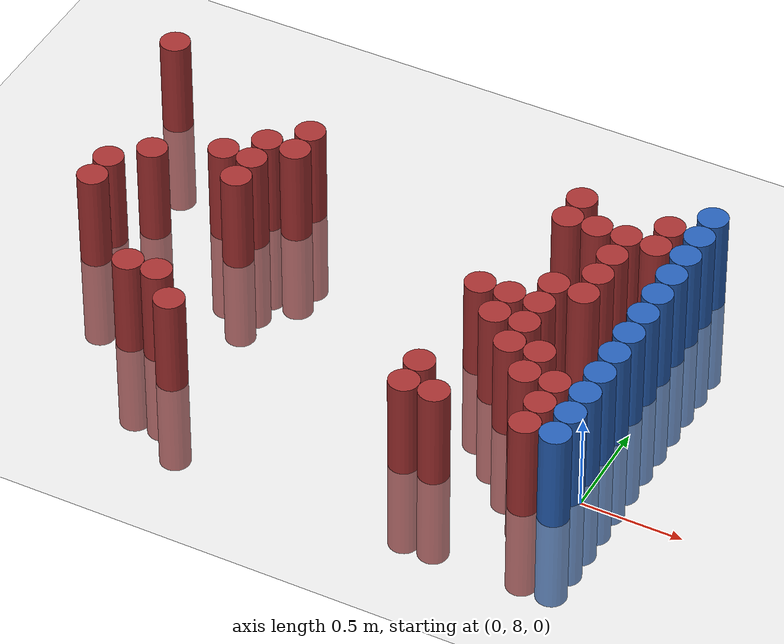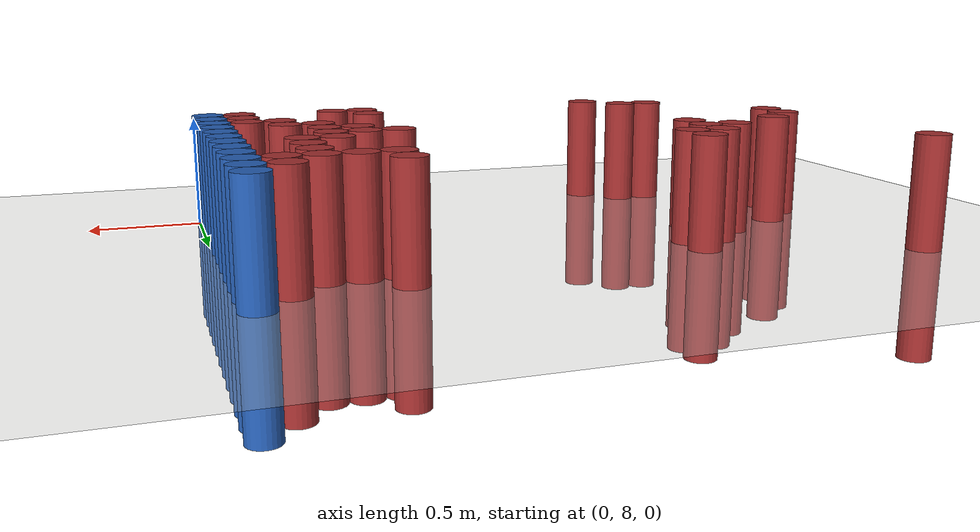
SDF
<sdf version="1.6">
 <world name="default">
  <model name="ground_plane">
   <static>1</static>
   <link name="link">
    <collision name="collision">
     <geometry><plane><normal>0 0 1</normal><size>100 100</size></plane></geometry>
     <surface><friction><ode><mu>100</mu><mu2>50</mu2></ode></friction></surface>
    </collision>
    <visual name="visual">
     <cast_shadows>0</cast_shadows>
     <geometry><plane><normal>0 0 1</normal><size>100 100</size></plane></geometry>
     <material>
      <script><uri>file://media/materials/scripts/gazebo.material</uri><name>Gazebo/Grey</name></script>
     </material>
    </visual>
   </link>
  </model>
  <model name="unit_cylinder_222">
   <static>1</static>
   <pose>-2.925000 9.525000 0.000000 0.000000 0.000000 0.000000</pose>
   <link name="link">
    <inertial>
     <mass>1</mass>
     <inertia><ixx>0.145833</ixx><ixy>0</ixy><ixz>0</ixz><iyy>0.145833</iyy><iyz>0</iyz><izz>0.125</izz></inertia>
    </inertial>
    <collision name="collision">
     <geometry><cylinder><radius>0.075000</radius><length>1</length></cylinder></geometry>
    </collision>
    <visual name="visual">
     <geometry><cylinder><radius>0.075000</radius><length>1</length></cylinder></geometry>
     <material>
      <ambient>0.648000 0.192000 0.192000 1</ambient>
      <diffuse>0.648000 0.192000 0.192000 1</diffuse>
     </material>
     <material>
      <script><name>Gazebo/Grey</name><uri>file://media/materials/scripts/gazebo.material</uri></script>
     </material>
    </visual>
   </link>
  </model>
  <model name="unit_cylinder_231">
   <static>1</static>
   <pose>-2.775000 8.475000 0.000000 0.000000 0.000000 0.000000</pose>
   <link name="link">
    <inertial>
     <mass>1</mass>
     <inertia><ixx>0.145833</ixx><ixy>0</ixy><ixz>0</ixz><iyy>0.145833</iyy><iyz>0</iyz><izz>0.125</izz></inertia>
    </inertial>
    <collision name="collision">
     <geometry><cylinder><radius>0.075000</radius><length>1</length></cylinder></geometry>
    </collision>
    <visual name="visual">
     <geometry><cylinder><radius>0.075000</radius><length>1</length></cylinder></geometry>
     <material>
      <ambient>0.648000 0.192000 0.192000 1</ambient>
      <diffuse>0.648000 0.192000 0.192000 1</diffuse>
     </material>
     <material>
      <script><name>Gazebo/Grey</name><uri>file://media/materials/scripts/gazebo.material</uri></script>
     </material>
    </visual>
   </link>
  </model>
  <model name="unit_cylinder_232">
   <static>1</static>
   <pose>-2.775000 8.625000 0.000000 0.000000 0.000000 0.000000</pose>
   <link name="link">
    <inertial>
     <mass>1</mass>
     <inertia><ixx>0.145833</ixx><ixy>0</ixy><ixz>0</ixz><iyy>0.145833</iyy><iyz>0</iyz><izz>0.125</izz></inertia>
    </inertial>
    <collision name="collision">
     <geometry><cylinder><radius>0.075000</radius><length>1</length></cylinder></geometry>
    </collision>
    <visual name="visual">
     <geometry><cylinder><radius>0.075000</radius><length>1</length></cylinder></geometry>
     <material>
      <ambient>0.648000 0.192000 0.192000 1</ambient>
      <diffuse>0.648000 0.192000 0.192000 1</diffuse>
     </material>
     <material>
      <script><name>Gazebo/Grey</name><uri>file://media/materials/scripts/gazebo.material</uri></script>
     </material>
    </visual>
   </link>
  </model>
  <model name="unit_cylinder_237">
   <static>1</static>
   <pose>-2.625000 8.775000 0.000000 0.000000 0.000000 0.000000</pose>
   <link name="link">
    <inertial>
     <mass>1</mass>
     <inertia><ixx>0.145833</ixx><ixy>0</ixy><ixz>0</ixz><iyy>0.145833</iyy><iyz>0</iyz><izz>0.125</izz></inertia>
    </inertial>
    <collision name="collision">
     <geometry><cylinder><radius>0.075000</radius><length>1</length></cylinder></geometry>
    </collision>
    <visual name="visual">
     <geometry><cylinder><radius>0.075000</radius><length>1</length></cylinder></geometry>
     <material>
      <ambient>0.648000 0.192000 0.192000 1</ambient>
      <diffuse>0.648000 0.192000 0.192000 1</diffuse>
     </material>
     <material>
      <script><name>Gazebo/Grey</name><uri>file://media/materials/scripts/gazebo.material</uri></script>
     </material>
    </visual>
   </link>
  </model>
  <model name="unit_cylinder_241">
   <static>1</static>
   <pose>-2.325000 8.025000 0.000000 0.000000 0.000000 0.000000</pose>
   <link name="link">
    <inertial>
     <mass>1</mass>
     <inertia><ixx>0.145833</ixx><ixy>0</ixy><ixz>0</ixz><iyy>0.145833</iyy><iyz>0</iyz><izz>0.125</izz></inertia>
    </inertial>
    <collision name="collision">
     <geometry><cylinder><radius>0.075000</radius><length>1</length></cylinder></geometry>
    </collision>
    <visual name="visual">
     <geometry><cylinder><radius>0.075000</radius><length>1</length></cylinder></geometry>
     <material>
      <ambient>0.648000 0.192000 0.192000 1</ambient>
      <diffuse>0.648000 0.192000 0.192000 1</diffuse>
     </material>
     <material>
      <script><name>Gazebo/Grey</name><uri>file://media/materials/scripts/gazebo.material</uri></script>
     </material>
    </visual>
   </link>
  </model>
  <model name="unit_cylinder_242">
   <static>1</static>
   <pose>-2.325000 8.925000 0.000000 0.000000 0.000000 0.000000</pose>
   <link name="link">
    <inertial>
     <mass>1</mass>
     <inertia><ixx>0.145833</ixx><ixy>0</ixy><ixz>0</ixz><iyy>0.145833</iyy><iyz>0</iyz><izz>0.125</izz></inertia>
    </inertial>
    <collision name="collision">
     <geometry><cylinder><radius>0.075000</radius><length>1</length></cylinder></geometry>
    </collision>
    <visual name="visual">
     <geometry><cylinder><radius>0.075000</radius><length>1</length></cylinder></geometry>
     <material>
      <ambient>0.648000 0.192000 0.192000 1</ambient>
      <diffuse>0.648000 0.192000 0.192000 1</diffuse>
     </material>
     <material>
      <script><name>Gazebo/Grey</name><uri>file://media/materials/scripts/gazebo.material</uri></script>
     </material>
    </visual>
   </link>
  </model>
  <model name="unit_cylinder_244">
   <static>1</static>
   <pose>-2.175000 8.025000 0.000000 0.000000 0.000000 0.000000</pose>
   <link name="link">
    <inertial>
     <mass>1</mass>
     <inertia><ixx>0.145833</ixx><ixy>0</ixy><ixz>0</ixz><iyy>0.145833</iyy><iyz>0</iyz><izz>0.125</izz></inertia>
    </inertial>
    <collision name="collision">
     <geometry><cylinder><radius>0.075000</radius><length>1</length></cylinder></geometry>
    </collision>
    <visual name="visual">
     <geometry><cylinder><radius>0.075000</radius><length>1</length></cylinder></geometry>
     <material>
      <ambient>0.648000 0.192000 0.192000 1</ambient>
      <diffuse>0.648000 0.192000 0.192000 1</diffuse>
     </material>
     <material>
      <script><name>Gazebo/Grey</name><uri>file://media/materials/scripts/gazebo.material</uri></script>
     </material>
    </visual>
   </link>
  </model>
  <model name="unit_cylinder_245">
   <static>1</static>
   <pose>-2.175000 8.775000 0.000000 0.000000 0.000000 0.000000</pose>
   <link name="link">
    <inertial>
     <mass>1</mass>
     <inertia><ixx>0.145833</ixx><ixy>0</ixy><ixz>0</ixz><iyy>0.145833</iyy><iyz>0</iyz><izz>0.125</izz></inertia>
    </inertial>
    <collision name="collision">
     <geometry><cylinder><radius>0.075000</radius><length>1</length></cylinder></geometry>
    </collision>
    <visual name="visual">
     <geometry><cylinder><radius>0.075000</radius><length>1</length></cylinder></geometry>
     <material>
      <ambient>0.648000 0.192000 0.192000 1</ambient>
      <diffuse>0.648000 0.192000 0.192000 1</diffuse>
     </material>
     <material>
      <script><name>Gazebo/Grey</name><uri>file://media/materials/scripts/gazebo.material</uri></script>
     </material>
    </visual>
   </link>
  </model>
  <model name="unit_cylinder_246">
   <static>1</static>
   <pose>-2.175000 8.925000 0.000000 0.000000 0.000000 0.000000</pose>
   <link name="link">
    <inertial>
     <mass>1</mass>
     <inertia><ixx>0.145833</ixx><ixy>0</ixy><ixz>0</ixz><iyy>0.145833</iyy><iyz>0</iyz><izz>0.125</izz></inertia>
    </inertial>
    <collision name="collision">
     <geometry><cylinder><radius>0.075000</radius><length>1</length></cylinder></geometry>
    </collision>
    <visual name="visual">
     <geometry><cylinder><radius>0.075000</radius><length>1</length></cylinder></geometry>
     <material>
      <ambient>0.648000 0.192000 0.192000 1</ambient>
      <diffuse>0.648000 0.192000 0.192000 1</diffuse>
     </material>
     <material>
      <script><name>Gazebo/Grey</name><uri>file://media/materials/scripts/gazebo.material</uri></script>
     </material>
    </visual>
   </link>
  </model>
  <model name="unit_cylinder_247">
   <static>1</static>
   <pose>-2.175000 9.075000 0.000000 0.000000 0.000000 0.000000</pose>
   <link name="link">
    <inertial>
     <mass>1</mass>
     <inertia><ixx>0.145833</ixx><ixy>0</ixy><ixz>0</ixz><iyy>0.145833</iyy><iyz>0</iyz><izz>0.125</izz></inertia>
    </inertial>
    <collision name="collision">
     <geometry><cylinder><radius>0.075000</radius><length>1</length></cylinder></geometry>
    </collision>
    <visual name="visual">
     <geometry><cylinder><radius>0.075000</radius><length>1</length></cylinder></geometry>
     <material>
      <ambient>0.648000 0.192000 0.192000 1</ambient>
      <diffuse>0.648000 0.192000 0.192000 1</diffuse>
     </material>
     <material>
      <script><name>Gazebo/Grey</name><uri>file://media/materials/scripts/gazebo.material</uri></script>
     </material>
    </visual>
   </link>
  </model>
  <model name="unit_cylinder_248">
   <static>1</static>
   <pose>-2.025000 7.875000 0.000000 0.000000 0.000000 0.000000</pose>
   <link name="link">
    <inertial>
     <mass>1</mass>
     <inertia><ixx>0.145833</ixx><ixy>0</ixy><ixz>0</ixz><iyy>0.145833</iyy><iyz>0</iyz><izz>0.125</izz></inertia>
    </inertial>
    <collision name="collision">
     <geometry><cylinder><radius>0.075000</radius><length>1</length></cylinder></geometry>
    </collision>
    <visual name="visual">
     <geometry><cylinder><radius>0.075000</radius><length>1</length></cylinder></geometry>
     <material>
      <ambient>0.648000 0.192000 0.192000 1</ambient>
      <diffuse>0.648000 0.192000 0.192000 1</diffuse>
     </material>
     <material>
      <script><name>Gazebo/Grey</name><uri>file://media/materials/scripts/gazebo.material</uri></script>
     </material>
    </visual>
   </link>
  </model>
  <model name="unit_cylinder_249">
   <static>1</static>
   <pose>-2.025000 9.075000 0.000000 0.000000 0.000000 0.000000</pose>
   <link name="link">
    <inertial>
     <mass>1</mass>
     <inertia><ixx>0.145833</ixx><ixy>0</ixy><ixz>0</ixz><iyy>0.145833</iyy><iyz>0</iyz><izz>0.125</izz></inertia>
    </inertial>
    <collision name="collision">
     <geometry><cylinder><radius>0.075000</radius><length>1</length></cylinder></geometry>
    </collision>
    <visual name="visual">
     <geometry><cylinder><radius>0.075000</radius><length>1</length></cylinder></geometry>
     <material>
      <ambient>0.648000 0.192000 0.192000 1</ambient>
      <diffuse>0.648000 0.192000 0.192000 1</diffuse>
     </material>
     <material>
      <script><name>Gazebo/Grey</name><uri>file://media/materials/scripts/gazebo.material</uri></script>
     </material>
    </visual>
   </link>
  </model>
  <model name="unit_cylinder_250">
   <static>1</static>
   <pose>-2.025000 9.225000 0.000000 0.000000 0.000000 0.000000</pose>
   <link name="link">
    <inertial>
     <mass>1</mass>
     <inertia><ixx>0.145833</ixx><ixy>0</ixy><ixz>0</ixz><iyy>0.145833</iyy><iyz>0</iyz><izz>0.125</izz></inertia>
    </inertial>
    <collision name="collision">
     <geometry><cylinder><radius>0.075000</radius><length>1</length></cylinder></geometry>
    </collision>
    <visual name="visual">
     <geometry><cylinder><radius>0.075000</radius><length>1</length></cylinder></geometry>
     <material>
      <ambient>0.648000 0.192000 0.192000 1</ambient>
      <diffuse>0.648000 0.192000 0.192000 1</diffuse>
     </material>
     <material>
      <script><name>Gazebo/Grey</name><uri>file://media/materials/scripts/gazebo.material</uri></script>
     </material>
    </visual>
   </link>
  </model>
  <model name="unit_cylinder_261">
   <static>1</static>
   <pose>-0.825000 7.875000 0.000000 0.000000 0.000000 0.000000</pose>
   <link name="link">
    <inertial>
     <mass>1</mass>
     <inertia><ixx>0.145833</ixx><ixy>0</ixy><ixz>0</ixz><iyy>0.145833</iyy><iyz>0</iyz><izz>0.125</izz></inertia>
    </inertial>
    <collision name="collision">
     <geometry><cylinder><radius>0.075000</radius><length>1</length></cylinder></geometry>
    </collision>
    <visual name="visual">
     <geometry><cylinder><radius>0.075000</radius><length>1</length></cylinder></geometry>
     <material>
      <ambient>0.648000 0.192000 0.192000 1</ambient>
      <diffuse>0.648000 0.192000 0.192000 1</diffuse>
     </material>
     <material>
      <script><name>Gazebo/Grey</name><uri>file://media/materials/scripts/gazebo.material</uri></script>
     </material>
    </visual>
   </link>
  </model>
  <model name="unit_cylinder_262">
   <static>1</static>
   <pose>-0.825000 8.025000 0.000000 0.000000 0.000000 0.000000</pose>
   <link name="link">
    <inertial>
     <mass>1</mass>
     <inertia><ixx>0.145833</ixx><ixy>0</ixy><ixz>0</ixz><iyy>0.145833</iyy><iyz>0</iyz><izz>0.125</izz></inertia>
    </inertial>
    <collision name="collision">
     <geometry><cylinder><radius>0.075000</radius><length>1</length></cylinder></geometry>
    </collision>
    <visual name="visual">
     <geometry><cylinder><radius>0.075000</radius><length>1</length></cylinder></geometry>
     <material>
      <ambient>0.648000 0.192000 0.192000 1</ambient>
      <diffuse>0.648000 0.192000 0.192000 1</diffuse>
     </material>
     <material>
      <script><name>Gazebo/Grey</name><uri>file://media/materials/scripts/gazebo.material</uri></script>
     </material>
    </visual>
   </link>
  </model>
  <model name="unit_cylinder_263">
   <static>1</static>
   <pose>-0.825000 8.625000 0.000000 0.000000 0.000000 0.000000</pose>
   <link name="link">
    <inertial>
     <mass>1</mass>
     <inertia><ixx>0.145833</ixx><ixy>0</ixy><ixz>0</ixz><iyy>0.145833</iyy><iyz>0</iyz><izz>0.125</izz></inertia>
    </inertial>
    <collision name="collision">
     <geometry><cylinder><radius>0.075000</radius><length>1</length></cylinder></geometry>
    </collision>
    <visual name="visual">
     <geometry><cylinder><radius>0.075000</radius><length>1</length></cylinder></geometry>
     <material>
      <ambient>0.648000 0.192000 0.192000 1</ambient>
      <diffuse>0.648000 0.192000 0.192000 1</diffuse>
     </material>
     <material>
      <script><name>Gazebo/Grey</name><uri>file://media/materials/scripts/gazebo.material</uri></script>
     </material>
    </visual>
   </link>
  </model>
  <model name="unit_cylinder_267">
   <static>1</static>
   <pose>-0.675000 7.875000 0.000000 0.000000 0.000000 0.000000</pose>
   <link name="link">
    <inertial>
     <mass>1</mass>
     <inertia><ixx>0.145833</ixx><ixy>0</ixy><ixz>0</ixz><iyy>0.145833</iyy><iyz>0</iyz><izz>0.125</izz></inertia>
    </inertial>
    <collision name="collision">
     <geometry><cylinder><radius>0.075000</radius><length>1</length></cylinder></geometry>
    </collision>
    <visual name="visual">
     <geometry><cylinder><radius>0.075000</radius><length>1</length></cylinder></geometry>
     <material>
      <ambient>0.648000 0.192000 0.192000 1</ambient>
      <diffuse>0.648000 0.192000 0.192000 1</diffuse>
     </material>
     <material>
      <script><name>Gazebo/Grey</name><uri>file://media/materials/scripts/gazebo.material</uri></script>
     </material>
    </visual>
   </link>
  </model>
  <model name="unit_cylinder_268">
   <static>1</static>
   <pose>-0.675000 8.475000 0.000000 0.000000 0.000000 0.000000</pose>
   <link name="link">
    <inertial>
     <mass>1</mass>
     <inertia><ixx>0.145833</ixx><ixy>0</ixy><ixz>0</ixz><iyy>0.145833</iyy><iyz>0</iyz><izz>0.125</izz></inertia>
    </inertial>
    <collision name="collision">
     <geometry><cylinder><radius>0.075000</radius><length>1</length></cylinder></geometry>
    </collision>
    <visual name="visual">
     <geometry><cylinder><radius>0.075000</radius><length>1</length></cylinder></geometry>
     <material>
      <ambient>0.648000 0.192000 0.192000 1</ambient>
      <diffuse>0.648000 0.192000 0.192000 1</diffuse>
     </material>
     <material>
      <script><name>Gazebo/Grey</name><uri>file://media/materials/scripts/gazebo.material</uri></script>
     </material>
    </visual>
   </link>
  </model>
  <model name="unit_cylinder_269">
   <static>1</static>
   <pose>-0.675000 8.625000 0.000000 0.000000 0.000000 0.000000</pose>
   <link name="link">
    <inertial>
     <mass>1</mass>
     <inertia><ixx>0.145833</ixx><ixy>0</ixy><ixz>0</ixz><iyy>0.145833</iyy><iyz>0</iyz><izz>0.125</izz></inertia>
    </inertial>
    <collision name="collision">
     <geometry><cylinder><radius>0.075000</radius><length>1</length></cylinder></geometry>
    </collision>
    <visual name="visual">
     <geometry><cylinder><radius>0.075000</radius><length>1</length></cylinder></geometry>
     <material>
      <ambient>0.648000 0.192000 0.192000 1</ambient>
      <diffuse>0.648000 0.192000 0.192000 1</diffuse>
     </material>
     <material>
      <script><name>Gazebo/Grey</name><uri>file://media/materials/scripts/gazebo.material</uri></script>
     </material>
    </visual>
   </link>
  </model>
  <model name="unit_cylinder_270">
   <static>1</static>
   <pose>-0.675000 9.225000 0.000000 0.000000 0.000000 0.000000</pose>
   <link name="link">
    <inertial>
     <mass>1</mass>
     <inertia><ixx>0.145833</ixx><ixy>0</ixy><ixz>0</ixz><iyy>0.145833</iyy><iyz>0</iyz><izz>0.125</izz></inertia>
    </inertial>
    <collision name="collision">
     <geometry><cylinder><radius>0.075000</radius><length>1</length></cylinder></geometry>
    </collision>
    <visual name="visual">
     <geometry><cylinder><radius>0.075000</radius><length>1</length></cylinder></geometry>
     <material>
      <ambient>0.648000 0.192000 0.192000 1</ambient>
      <diffuse>0.648000 0.192000 0.192000 1</diffuse>
     </material>
     <material>
      <script><name>Gazebo/Grey</name><uri>file://media/materials/scripts/gazebo.material</uri></script>
     </material>
    </visual>
   </link>
  </model>
  <model name="unit_cylinder_271">
   <static>1</static>
   <pose>-0.675000 9.375000 0.000000 0.000000 0.000000 0.000000</pose>
   <link name="link">
    <inertial>
     <mass>1</mass>
     <inertia><ixx>0.145833</ixx><ixy>0</ixy><ixz>0</ixz><iyy>0.145833</iyy><iyz>0</iyz><izz>0.125</izz></inertia>
    </inertial>
    <collision name="collision">
     <geometry><cylinder><radius>0.075000</radius><length>1</length></cylinder></geometry>
    </collision>
    <visual name="visual">
     <geometry><cylinder><radius>0.075000</radius><length>1</length></cylinder></geometry>
     <material>
      <ambient>0.648000 0.192000 0.192000 1</ambient>
      <diffuse>0.648000 0.192000 0.192000 1</diffuse>
     </material>
     <material>
      <script><name>Gazebo/Grey</name><uri>file://media/materials/scripts/gazebo.material</uri></script>
     </material>
    </visual>
   </link>
  </model>
  <model name="unit_cylinder_276">
   <static>1</static>
   <pose>-0.525000 8.325000 0.000000 0.000000 0.000000 0.000000</pose>
   <link name="link">
    <inertial>
     <mass>1</mass>
     <inertia><ixx>0.145833</ixx><ixy>0</ixy><ixz>0</ixz><iyy>0.145833</iyy><iyz>0</iyz><izz>0.125</izz></inertia>
    </inertial>
    <collision name="collision">
     <geometry><cylinder><radius>0.075000</radius><length>1</length></cylinder></geometry>
    </collision>
    <visual name="visual">
     <geometry><cylinder><radius>0.075000</radius><length>1</length></cylinder></geometry>
     <material>
      <ambient>0.648000 0.192000 0.192000 1</ambient>
      <diffuse>0.648000 0.192000 0.192000 1</diffuse>
     </material>
     <material>
      <script><name>Gazebo/Grey</name><uri>file://media/materials/scripts/gazebo.material</uri></script>
     </material>
    </visual>
   </link>
  </model>
  <model name="unit_cylinder_277">
   <static>1</static>
   <pose>-0.525000 8.475000 0.000000 0.000000 0.000000 0.000000</pose>
   <link name="link">
    <inertial>
     <mass>1</mass>
     <inertia><ixx>0.145833</ixx><ixy>0</ixy><ixz>0</ixz><iyy>0.145833</iyy><iyz>0</iyz><izz>0.125</izz></inertia>
    </inertial>
    <collision name="collision">
     <geometry><cylinder><radius>0.075000</radius><length>1</length></cylinder></geometry>
    </collision>
    <visual name="visual">
     <geometry><cylinder><radius>0.075000</radius><length>1</length></cylinder></geometry>
     <material>
      <ambient>0.648000 0.192000 0.192000 1</ambient>
      <diffuse>0.648000 0.192000 0.192000 1</diffuse>
     </material>
     <material>
      <script><name>Gazebo/Grey</name><uri>file://media/materials/scripts/gazebo.material</uri></script>
     </material>
    </visual>
   </link>
  </model>
  <model name="unit_cylinder_278">
   <static>1</static>
   <pose>-0.525000 8.625000 0.000000 0.000000 0.000000 0.000000</pose>
   <link name="link">
    <inertial>
     <mass>1</mass>
     <inertia><ixx>0.145833</ixx><ixy>0</ixy><ixz>0</ixz><iyy>0.145833</iyy><iyz>0</iyz><izz>0.125</izz></inertia>
    </inertial>
    <collision name="collision">
     <geometry><cylinder><radius>0.075000</radius><length>1</length></cylinder></geometry>
    </collision>
    <visual name="visual">
     <geometry><cylinder><radius>0.075000</radius><length>1</length></cylinder></geometry>
     <material>
      <ambient>0.648000 0.192000 0.192000 1</ambient>
      <diffuse>0.648000 0.192000 0.192000 1</diffuse>
     </material>
     <material>
      <script><name>Gazebo/Grey</name><uri>file://media/materials/scripts/gazebo.material</uri></script>
     </material>
    </visual>
   </link>
  </model>
  <model name="unit_cylinder_279">
   <static>1</static>
   <pose>-0.525000 8.775000 0.000000 0.000000 0.000000 0.000000</pose>
   <link name="link">
    <inertial>
     <mass>1</mass>
     <inertia><ixx>0.145833</ixx><ixy>0</ixy><ixz>0</ixz><iyy>0.145833</iyy><iyz>0</iyz><izz>0.125</izz></inertia>
    </inertial>
    <collision name="collision">
     <geometry><cylinder><radius>0.075000</radius><length>1</length></cylinder></geometry>
    </collision>
    <visual name="visual">
     <geometry><cylinder><radius>0.075000</radius><length>1</length></cylinder></geometry>
     <material>
      <ambient>0.648000 0.192000 0.192000 1</ambient>
      <diffuse>0.648000 0.192000 0.192000 1</diffuse>
     </material>
     <material>
      <script><name>Gazebo/Grey</name><uri>file://media/materials/scripts/gazebo.material</uri></script>
     </material>
    </visual>
   </link>
  </model>
  <model name="unit_cylinder_280">
   <static>1</static>
   <pose>-0.525000 9.225000 0.000000 0.000000 0.000000 0.000000</pose>
   <link name="link">
    <inertial>
     <mass>1</mass>
     <inertia><ixx>0.145833</ixx><ixy>0</ixy><ixz>0</ixz><iyy>0.145833</iyy><iyz>0</iyz><izz>0.125</izz></inertia>
    </inertial>
    <collision name="collision">
     <geometry><cylinder><radius>0.075000</radius><length>1</length></cylinder></geometry>
    </collision>
    <visual name="visual">
     <geometry><cylinder><radius>0.075000</radius><length>1</length></cylinder></geometry>
     <material>
      <ambient>0.648000 0.192000 0.192000 1</ambient>
      <diffuse>0.648000 0.192000 0.192000 1</diffuse>
     </material>
     <material>
      <script><name>Gazebo/Grey</name><uri>file://media/materials/scripts/gazebo.material</uri></script>
     </material>
    </visual>
   </link>
  </model>
  <model name="unit_cylinder_286">
   <static>1</static>
   <pose>-0.375000 8.175000 0.000000 0.000000 0.000000 0.000000</pose>
   <link name="link">
    <inertial>
     <mass>1</mass>
     <inertia><ixx>0.145833</ixx><ixy>0</ixy><ixz>0</ixz><iyy>0.145833</iyy><iyz>0</iyz><izz>0.125</izz></inertia>
    </inertial>
    <collision name="collision">
     <geometry><cylinder><radius>0.075000</radius><length>1</length></cylinder></geometry>
    </collision>
    <visual name="visual">
     <geometry><cylinder><radius>0.075000</radius><length>1</length></cylinder></geometry>
     <material>
      <ambient>0.648000 0.192000 0.192000 1</ambient>
      <diffuse>0.648000 0.192000 0.192000 1</diffuse>
     </material>
     <material>
      <script><name>Gazebo/Grey</name><uri>file://media/materials/scripts/gazebo.material</uri></script>
     </material>
    </visual>
   </link>
  </model>
  <model name="unit_cylinder_287">
   <static>1</static>
   <pose>-0.375000 8.325000 0.000000 0.000000 0.000000 0.000000</pose>
   <link name="link">
    <inertial>
     <mass>1</mass>
     <inertia><ixx>0.145833</ixx><ixy>0</ixy><ixz>0</ixz><iyy>0.145833</iyy><iyz>0</iyz><izz>0.125</izz></inertia>
    </inertial>
    <collision name="collision">
     <geometry><cylinder><radius>0.075000</radius><length>1</length></cylinder></geometry>
    </collision>
    <visual name="visual">
     <geometry><cylinder><radius>0.075000</radius><length>1</length></cylinder></geometry>
     <material>
      <ambient>0.648000 0.192000 0.192000 1</ambient>
      <diffuse>0.648000 0.192000 0.192000 1</diffuse>
     </material>
     <material>
      <script><name>Gazebo/Grey</name><uri>file://media/materials/scripts/gazebo.material</uri></script>
     </material>
    </visual>
   </link>
  </model>
  <model name="unit_cylinder_288">
   <static>1</static>
   <pose>-0.375000 8.775000 0.000000 0.000000 0.000000 0.000000</pose>
   <link name="link">
    <inertial>
     <mass>1</mass>
     <inertia><ixx>0.145833</ixx><ixy>0</ixy><ixz>0</ixz><iyy>0.145833</iyy><iyz>0</iyz><izz>0.125</izz></inertia>
    </inertial>
    <collision name="collision">
     <geometry><cylinder><radius>0.075000</radius><length>1</length></cylinder></geometry>
    </collision>
    <visual name="visual">
     <geometry><cylinder><radius>0.075000</radius><length>1</length></cylinder></geometry>
     <material>
      <ambient>0.648000 0.192000 0.192000 1</ambient>
      <diffuse>0.648000 0.192000 0.192000 1</diffuse>
     </material>
     <material>
      <script><name>Gazebo/Grey</name><uri>file://media/materials/scripts/gazebo.material</uri></script>
     </material>
    </visual>
   </link>
  </model>
  <model name="unit_cylinder_289">
   <static>1</static>
   <pose>-0.375000 8.925000 0.000000 0.000000 0.000000 0.000000</pose>
   <link name="link">
    <inertial>
     <mass>1</mass>
     <inertia><ixx>0.145833</ixx><ixy>0</ixy><ixz>0</ixz><iyy>0.145833</iyy><iyz>0</iyz><izz>0.125</izz></inertia>
    </inertial>
    <collision name="collision">
     <geometry><cylinder><radius>0.075000</radius><length>1</length></cylinder></geometry>
    </collision>
    <visual name="visual">
     <geometry><cylinder><radius>0.075000</radius><length>1</length></cylinder></geometry>
     <material>
      <ambient>0.648000 0.192000 0.192000 1</ambient>
      <diffuse>0.648000 0.192000 0.192000 1</diffuse>
     </material>
     <material>
      <script><name>Gazebo/Grey</name><uri>file://media/materials/scripts/gazebo.material</uri></script>
     </material>
    </visual>
   </link>
  </model>
  <model name="unit_cylinder_290">
   <static>1</static>
   <pose>-0.375000 9.075000 0.000000 0.000000 0.000000 0.000000</pose>
   <link name="link">
    <inertial>
     <mass>1</mass>
     <inertia><ixx>0.145833</ixx><ixy>0</ixy><ixz>0</ixz><iyy>0.145833</iyy><iyz>0</iyz><izz>0.125</izz></inertia>
    </inertial>
    <collision name="collision">
     <geometry><cylinder><radius>0.075000</radius><length>1</length></cylinder></geometry>
    </collision>
    <visual name="visual">
     <geometry><cylinder><radius>0.075000</radius><length>1</length></cylinder></geometry>
     <material>
      <ambient>0.648000 0.192000 0.192000 1</ambient>
      <diffuse>0.648000 0.192000 0.192000 1</diffuse>
     </material>
     <material>
      <script><name>Gazebo/Grey</name><uri>file://media/materials/scripts/gazebo.material</uri></script>
     </material>
    </visual>
   </link>
  </model>
  <model name="unit_cylinder_291">
   <static>1</static>
   <pose>-0.375000 9.225000 0.000000 0.000000 0.000000 0.000000</pose>
   <link name="link">
    <inertial>
     <mass>1</mass>
     <inertia><ixx>0.145833</ixx><ixy>0</ixy><ixz>0</ixz><iyy>0.145833</iyy><iyz>0</iyz><izz>0.125</izz></inertia>
    </inertial>
    <collision name="collision">
     <geometry><cylinder><radius>0.075000</radius><length>1</length></cylinder></geometry>
    </collision>
    <visual name="visual">
     <geometry><cylinder><radius>0.075000</radius><length>1</length></cylinder></geometry>
     <material>
      <ambient>0.648000 0.192000 0.192000 1</ambient>
      <diffuse>0.648000 0.192000 0.192000 1</diffuse>
     </material>
     <material>
      <script><name>Gazebo/Grey</name><uri>file://media/materials/scripts/gazebo.material</uri></script>
     </material>
    </visual>
   </link>
  </model>
  <model name="unit_cylinder_303">
   <static>1</static>
   <pose>-0.225000 7.875000 0.000000 0.000000 0.000000 0.000000</pose>
   <link name="link">
    <inertial>
     <mass>1</mass>
     <inertia><ixx>0.145833</ixx><ixy>0</ixy><ixz>0</ixz><iyy>0.145833</iyy><iyz>0</iyz><izz>0.125</izz></inertia>
    </inertial>
    <collision name="collision">
     <geometry><cylinder><radius>0.075000</radius><length>1</length></cylinder></geometry>
    </collision>
    <visual name="visual">
     <geometry><cylinder><radius>0.075000</radius><length>1</length></cylinder></geometry>
     <material>
      <ambient>0.648000 0.192000 0.192000 1</ambient>
      <diffuse>0.648000 0.192000 0.192000 1</diffuse>
     </material>
     <material>
      <script><name>Gazebo/Grey</name><uri>file://media/materials/scripts/gazebo.material</uri></script>
     </material>
    </visual>
   </link>
  </model>
  <model name="unit_cylinder_304">
   <static>1</static>
   <pose>-0.225000 8.025000 0.000000 0.000000 0.000000 0.000000</pose>
   <link name="link">
    <inertial>
     <mass>1</mass>
     <inertia><ixx>0.145833</ixx><ixy>0</ixy><ixz>0</ixz><iyy>0.145833</iyy><iyz>0</iyz><izz>0.125</izz></inertia>
    </inertial>
    <collision name="collision">
     <geometry><cylinder><radius>0.075000</radius><length>1</length></cylinder></geometry>
    </collision>
    <visual name="visual">
     <geometry><cylinder><radius>0.075000</radius><length>1</length></cylinder></geometry>
     <material>
      <ambient>0.648000 0.192000 0.192000 1</ambient>
      <diffuse>0.648000 0.192000 0.192000 1</diffuse>
     </material>
     <material>
      <script><name>Gazebo/Grey</name><uri>file://media/materials/scripts/gazebo.material</uri></script>
     </material>
    </visual>
   </link>
  </model>
  <model name="unit_cylinder_305">
   <static>1</static>
   <pose>-0.225000 8.175000 0.000000 0.000000 0.000000 0.000000</pose>
   <link name="link">
    <inertial>
     <mass>1</mass>
     <inertia><ixx>0.145833</ixx><ixy>0</ixy><ixz>0</ixz><iyy>0.145833</iyy><iyz>0</iyz><izz>0.125</izz></inertia>
    </inertial>
    <collision name="collision">
     <geometry><cylinder><radius>0.075000</radius><length>1</length></cylinder></geometry>
    </collision>
    <visual name="visual">
     <geometry><cylinder><radius>0.075000</radius><length>1</length></cylinder></geometry>
     <material>
      <ambient>0.648000 0.192000 0.192000 1</ambient>
      <diffuse>0.648000 0.192000 0.192000 1</diffuse>
     </material>
     <material>
      <script><name>Gazebo/Grey</name><uri>file://media/materials/scripts/gazebo.material</uri></script>
     </material>
    </visual>
   </link>
  </model>
  <model name="unit_cylinder_306">
   <static>1</static>
   <pose>-0.225000 9.225000 0.000000 0.000000 0.000000 0.000000</pose>
   <link name="link">
    <inertial>
     <mass>1</mass>
     <inertia><ixx>0.145833</ixx><ixy>0</ixy><ixz>0</ixz><iyy>0.145833</iyy><iyz>0</iyz><izz>0.125</izz></inertia>
    </inertial>
    <collision name="collision">
     <geometry><cylinder><radius>0.075000</radius><length>1</length></cylinder></geometry>
    </collision>
    <visual name="visual">
     <geometry><cylinder><radius>0.075000</radius><length>1</length></cylinder></geometry>
     <material>
      <ambient>0.648000 0.192000 0.192000 1</ambient>
      <diffuse>0.648000 0.192000 0.192000 1</diffuse>
     </material>
     <material>
      <script><name>Gazebo/Grey</name><uri>file://media/materials/scripts/gazebo.material</uri></script>
     </material>
    </visual>
   </link>
  </model>
  <model name="unit_cylinder_307">
   <static>1</static>
   <pose>-0.225000 9.375000 0.000000 0.000000 0.000000 0.000000</pose>
   <link name="link">
    <inertial>
     <mass>1</mass>
     <inertia><ixx>0.145833</ixx><ixy>0</ixy><ixz>0</ixz><iyy>0.145833</iyy><iyz>0</iyz><izz>0.125</izz></inertia>
    </inertial>
    <collision name="collision">
     <geometry><cylinder><radius>0.075000</radius><length>1</length></cylinder></geometry>
    </collision>
    <visual name="visual">
     <geometry><cylinder><radius>0.075000</radius><length>1</length></cylinder></geometry>
     <material>
      <ambient>0.648000 0.192000 0.192000 1</ambient>
      <diffuse>0.648000 0.192000 0.192000 1</diffuse>
     </material>
     <material>
      <script><name>Gazebo/Grey</name><uri>file://media/materials/scripts/gazebo.material</uri></script>
     </material>
    </visual>
   </link>
  </model>
  <model name="unit_cylinder_326">
   <static>1</static>
   <pose>-0.075000 7.875000 0.000000 0.000000 0.000000 0.000000</pose>
   <link name="link">
    <inertial>
     <mass>1</mass>
     <inertia><ixx>0.145833</ixx><ixy>0</ixy><ixz>0</ixz><iyy>0.145833</iyy><iyz>0</iyz><izz>0.125</izz></inertia>
    </inertial>
    <collision name="collision">
     <geometry><cylinder><radius>0.075000</radius><length>1</length></cylinder></geometry>
    </collision>
    <visual name="visual">
     <geometry><cylinder><radius>0.075000</radius><length>1</length></cylinder></geometry>
     <material>
      <ambient>0.152000 0.379000 0.720000 1</ambient>
      <diffuse>0.152000 0.379000 0.720000 1</diffuse>
     </material>
     <material>
      <script><name>Gazebo/Grey</name><uri>file://media/materials/scripts/gazebo.material</uri></script>
     </material>
    </visual>
   </link>
  </model>
  <model name="unit_cylinder_327">
   <static>1</static>
   <pose>-0.075000 8.025000 0.000000 0.000000 0.000000 0.000000</pose>
   <link name="link">
    <inertial>
     <mass>1</mass>
     <inertia><ixx>0.145833</ixx><ixy>0</ixy><ixz>0</ixz><iyy>0.145833</iyy><iyz>0</iyz><izz>0.125</izz></inertia>
    </inertial>
    <collision name="collision">
     <geometry><cylinder><radius>0.075000</radius><length>1</length></cylinder></geometry>
    </collision>
    <visual name="visual">
     <geometry><cylinder><radius>0.075000</radius><length>1</length></cylinder></geometry>
     <material>
      <ambient>0.152000 0.379000 0.720000 1</ambient>
      <diffuse>0.152000 0.379000 0.720000 1</diffuse>
     </material>
     <material>
      <script><name>Gazebo/Grey</name><uri>file://media/materials/scripts/gazebo.material</uri></script>
     </material>
    </visual>
   </link>
  </model>
  <model name="unit_cylinder_328">
   <static>1</static>
   <pose>-0.075000 8.175000 0.000000 0.000000 0.000000 0.000000</pose>
   <link name="link">
    <inertial>
     <mass>1</mass>
     <inertia><ixx>0.145833</ixx><ixy>0</ixy><ixz>0</ixz><iyy>0.145833</iyy><iyz>0</iyz><izz>0.125</izz></inertia>
    </inertial>
    <collision name="collision">
     <geometry><cylinder><radius>0.075000</radius><length>1</length></cylinder></geometry>
    </collision>
    <visual name="visual">
     <geometry><cylinder><radius>0.075000</radius><length>1</length></cylinder></geometry>
     <material>
      <ambient>0.152000 0.379000 0.720000 1</ambient>
      <diffuse>0.152000 0.379000 0.720000 1</diffuse>
     </material>
     <material>
      <script><name>Gazebo/Grey</name><uri>file://media/materials/scripts/gazebo.material</uri></script>
     </material>
    </visual>
   </link>
  </model>
  <model name="unit_cylinder_329">
   <static>1</static>
   <pose>-0.075000 8.325000 0.000000 0.000000 0.000000 0.000000</pose>
   <link name="link">
    <inertial>
     <mass>1</mass>
     <inertia><ixx>0.145833</ixx><ixy>0</ixy><ixz>0</ixz><iyy>0.145833</iyy><iyz>0</iyz><izz>0.125</izz></inertia>
    </inertial>
    <collision name="collision">
     <geometry><cylinder><radius>0.075000</radius><length>1</length></cylinder></geometry>
    </collision>
    <visual name="visual">
     <geometry><cylinder><radius>0.075000</radius><length>1</length></cylinder></geometry>
     <material>
      <ambient>0.152000 0.379000 0.720000 1</ambient>
      <diffuse>0.152000 0.379000 0.720000 1</diffuse>
     </material>
     <material>
      <script><name>Gazebo/Grey</name><uri>file://media/materials/scripts/gazebo.material</uri></script>
     </material>
    </visual>
   </link>
  </model>
  <model name="unit_cylinder_330">
   <static>1</static>
   <pose>-0.075000 8.475000 0.000000 0.000000 0.000000 0.000000</pose>
   <link name="link">
    <inertial>
     <mass>1</mass>
     <inertia><ixx>0.145833</ixx><ixy>0</ixy><ixz>0</ixz><iyy>0.145833</iyy><iyz>0</iyz><izz>0.125</izz></inertia>
    </inertial>
    <collision name="collision">
     <geometry><cylinder><radius>0.075000</radius><length>1</length></cylinder></geometry>
    </collision>
    <visual name="visual">
     <geometry><cylinder><radius>0.075000</radius><length>1</length></cylinder></geometry>
     <material>
      <ambient>0.152000 0.379000 0.720000 1</ambient>
      <diffuse>0.152000 0.379000 0.720000 1</diffuse>
     </material>
     <material>
      <script><name>Gazebo/Grey</name><uri>file://media/materials/scripts/gazebo.material</uri></script>
     </material>
    </visual>
   </link>
  </model>
  <model name="unit_cylinder_331">
   <static>1</static>
   <pose>-0.075000 8.625000 0.000000 0.000000 0.000000 0.000000</pose>
   <link name="link">
    <inertial>
     <mass>1</mass>
     <inertia><ixx>0.145833</ixx><ixy>0</ixy><ixz>0</ixz><iyy>0.145833</iyy><iyz>0</iyz><izz>0.125</izz></inertia>
    </inertial>
    <collision name="collision">
     <geometry><cylinder><radius>0.075000</radius><length>1</length></cylinder></geometry>
    </collision>
    <visual name="visual">
     <geometry><cylinder><radius>0.075000</radius><length>1</length></cylinder></geometry>
     <material>
      <ambient>0.152000 0.379000 0.720000 1</ambient>
      <diffuse>0.152000 0.379000 0.720000 1</diffuse>
     </material>
     <material>
      <script><name>Gazebo/Grey</name><uri>file://media/materials/scripts/gazebo.material</uri></script>
     </material>
    </visual>
   </link>
  </model>
  <model name="unit_cylinder_332">
   <static>1</static>
   <pose>-0.075000 8.775000 0.000000 0.000000 0.000000 0.000000</pose>
   <link name="link">
    <inertial>
     <mass>1</mass>
     <inertia><ixx>0.145833</ixx><ixy>0</ixy><ixz>0</ixz><iyy>0.145833</iyy><iyz>0</iyz><izz>0.125</izz></inertia>
    </inertial>
    <collision name="collision">
     <geometry><cylinder><radius>0.075000</radius><length>1</length></cylinder></geometry>
    </collision>
    <visual name="visual">
     <geometry><cylinder><radius>0.075000</radius><length>1</length></cylinder></geometry>
     <material>
      <ambient>0.152000 0.379000 0.720000 1</ambient>
      <diffuse>0.152000 0.379000 0.720000 1</diffuse>
     </material>
     <material>
      <script><name>Gazebo/Grey</name><uri>file://media/materials/scripts/gazebo.material</uri></script>
     </material>
    </visual>
   </link>
  </model>
  <model name="unit_cylinder_333">
   <static>1</static>
   <pose>-0.075000 8.925000 0.000000 0.000000 0.000000 0.000000</pose>
   <link name="link">
    <inertial>
     <mass>1</mass>
     <inertia><ixx>0.145833</ixx><ixy>0</ixy><ixz>0</ixz><iyy>0.145833</iyy><iyz>0</iyz><izz>0.125</izz></inertia>
    </inertial>
    <collision name="collision">
     <geometry><cylinder><radius>0.075000</radius><length>1</length></cylinder></geometry>
    </collision>
    <visual name="visual">
     <geometry><cylinder><radius>0.075000</radius><length>1</length></cylinder></geometry>
     <material>
      <ambient>0.152000 0.379000 0.720000 1</ambient>
      <diffuse>0.152000 0.379000 0.720000 1</diffuse>
     </material>
     <material>
      <script><name>Gazebo/Grey</name><uri>file://media/materials/scripts/gazebo.material</uri></script>
     </material>
    </visual>
   </link>
  </model>
  <model name="unit_cylinder_334">
   <static>1</static>
   <pose>-0.075000 9.075000 0.000000 0.000000 0.000000 0.000000</pose>
   <link name="link">
    <inertial>
     <mass>1</mass>
     <inertia><ixx>0.145833</ixx><ixy>0</ixy><ixz>0</ixz><iyy>0.145833</iyy><iyz>0</iyz><izz>0.125</izz></inertia>
    </inertial>
    <collision name="collision">
     <geometry><cylinder><radius>0.075000</radius><length>1</length></cylinder></geometry>
    </collision>
    <visual name="visual">
     <geometry><cylinder><radius>0.075000</radius><length>1</length></cylinder></geometry>
     <material>
      <ambient>0.152000 0.379000 0.720000 1</ambient>
      <diffuse>0.152000 0.379000 0.720000 1</diffuse>
     </material>
     <material>
      <script><name>Gazebo/Grey</name><uri>file://media/materials/scripts/gazebo.material</uri></script>
     </material>
    </visual>
   </link>
  </model>
  <model name="unit_cylinder_335">
   <static>1</static>
   <pose>-0.075000 9.225000 0.000000 0.000000 0.000000 0.000000</pose>
   <link name="link">
    <inertial>
     <mass>1</mass>
     <inertia><ixx>0.145833</ixx><ixy>0</ixy><ixz>0</ixz><iyy>0.145833</iyy><iyz>0</iyz><izz>0.125</izz></inertia>
    </inertial>
    <collision name="collision">
     <geometry><cylinder><radius>0.075000</radius><length>1</length></cylinder></geometry>
    </collision>
    <visual name="visual">
     <geometry><cylinder><radius>0.075000</radius><length>1</length></cylinder></geometry>
     <material>
      <ambient>0.152000 0.379000 0.720000 1</ambient>
      <diffuse>0.152000 0.379000 0.720000 1</diffuse>
     </material>
     <material>
      <script><name>Gazebo/Grey</name><uri>file://media/materials/scripts/gazebo.material</uri></script>
     </material>
    </visual>
   </link>
  </model>
  <model name="unit_cylinder_336">
   <static>1</static>
   <pose>-0.075000 9.375000 0.000000 0.000000 0.000000 0.000000</pose>
   <link name="link">
    <inertial>
     <mass>1</mass>
     <inertia><ixx>0.145833</ixx><ixy>0</ixy><ixz>0</ixz><iyy>0.145833</iyy><iyz>0</iyz><izz>0.125</izz></inertia>
    </inertial>
    <collision name="collision">
     <geometry><cylinder><radius>0.075000</radius><length>1</length></cylinder></geometry>
    </collision>
    <visual name="visual">
     <geometry><cylinder><radius>0.075000</radius><length>1</length></cylinder></geometry>
     <material>
      <ambient>0.152000 0.379000 0.720000 1</ambient>
      <diffuse>0.152000 0.379000 0.720000 1</diffuse>
     </material>
     <material>
      <script><name>Gazebo/Grey</name><uri>file://media/materials/scripts/gazebo.material</uri></script>
     </material>
    </visual>
   </link>
  </model>
  <model name="unit_cylinder_337">
   <static>1</static>
   <pose>-0.075000 9.525000 0.000000 0.000000 0.000000 0.000000</pose>
   <link name="link">
    <inertial>
     <mass>1</mass>
     <inertia><ixx>0.145833</ixx><ixy>0</ixy><ixz>0</ixz><iyy>0.145833</iyy><iyz>0</iyz><izz>0.125</izz></inertia>
    </inertial>
    <collision name="collision">
     <geometry><cylinder><radius>0.075000</radius><length>1</length></cylinder></geometry>
    </collision>
    <visual name="visual">
     <geometry><cylinder><radius>0.075000</radius><length>1</length></cylinder></geometry>
     <material>
      <ambient>0.152000 0.379000 0.720000 1</ambient>
      <diffuse>0.152000 0.379000 0.720000 1</diffuse>
     </material>
     <material>
      <script><name>Gazebo/Grey</name><uri>file://media/materials/scripts/gazebo.material</uri></script>
     </material>
    </visual>
   </link>
  </model>
 </world>
</sdf>
